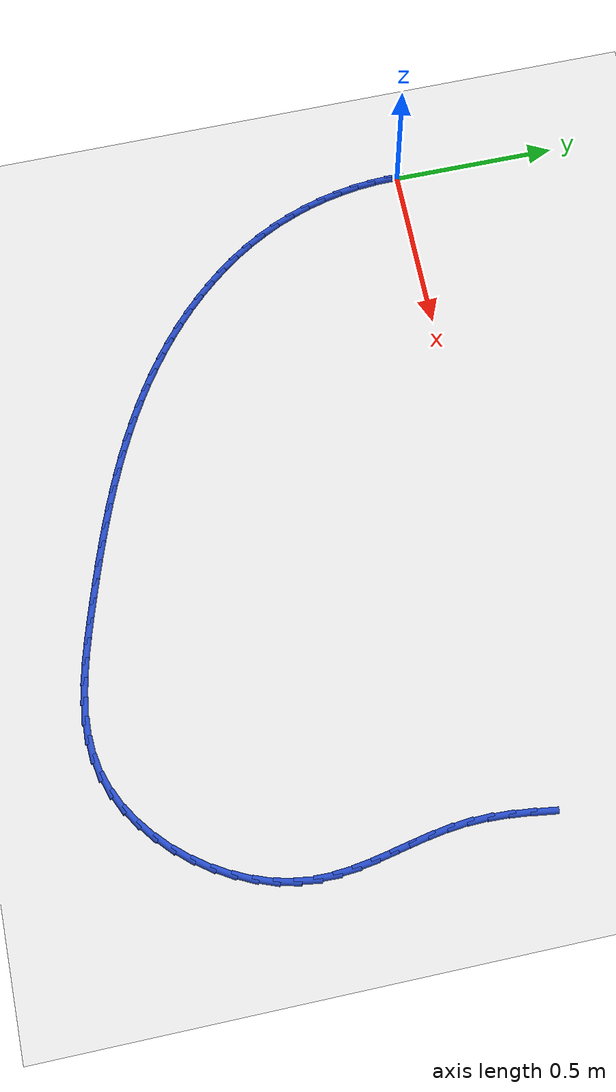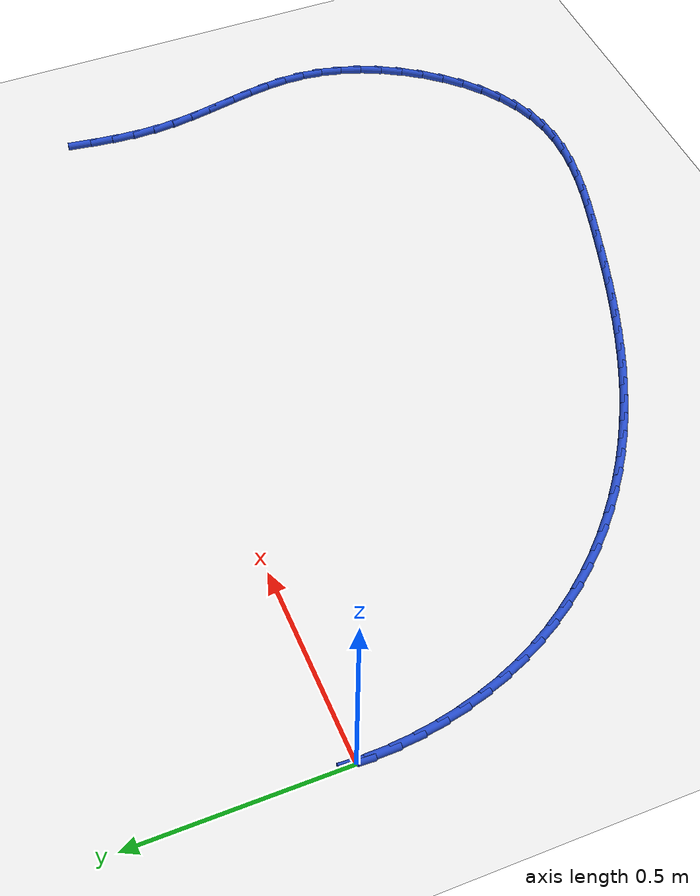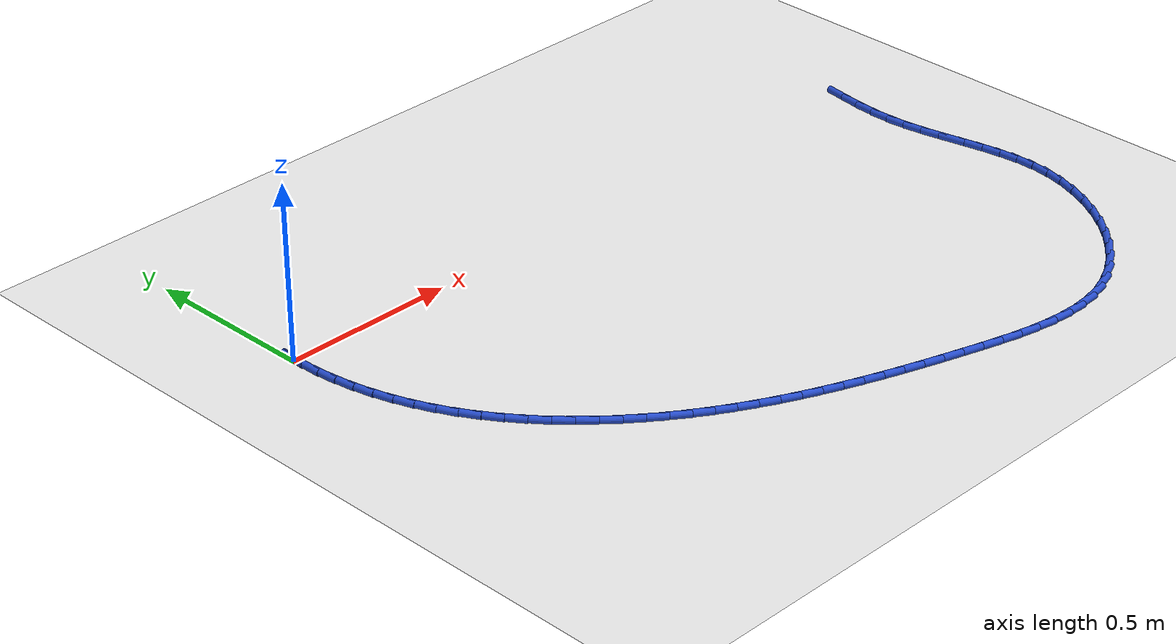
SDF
<sdf version="1.6">
 <world name="default">
  <model name="ground_plane">
   <static>1</static>
   <link name="link">
    <collision name="collision">
     <geometry><plane><normal>0 0 1</normal><size>100 100</size></plane></geometry>
     <surface><friction><ode><mu>100</mu><mu2>50</mu2></ode></friction></surface>
    </collision>
    <visual name="visual">
     <cast_shadows>0</cast_shadows>
     <geometry><plane><normal>0 0 1</normal><size>100 100</size></plane></geometry>
     <material>
      <script><uri>file://media/materials/scripts/gazebo.material</uri><name>Gazebo/WhiteGlow</name></script>
     </material>
    </visual>
   </link>
  </model>
  <model name="line">
   <link name="link_0">
    <pose>3.122502256758253e-17 1.3877787807814457e-17 0.01 0 1.57 1.5209189203421452</pose>
    <collision name="collision">
     <geometry><cylinder><radius>0.01</radius><length>0.08</length></cylinder></geometry>
    </collision>
    <visual name="visual">
     <material>
      <script><name>Gazebo/Blue</name><uri>file://media/materials/scripts/gazebo.material</uri></script>
     </material>
     <geometry><cylinder><radius>0.01</radius><length>0.08</length></cylinder></geometry>
    </visual>
   </link>
   <link name="link_66">
    <pose>2.0077168839164266 -0.030928540000741786 0.01 0 1.57 1.4371809592335538</pose>
    <collision name="collision">
     <geometry><cylinder><radius>0.01</radius><length>0.08</length></cylinder></geometry>
    </collision>
    <visual name="visual">
     <material>
      <script><name>Gazebo/Blue</name><uri>file://media/materials/scripts/gazebo.material</uri></script>
     </material>
     <geometry><cylinder><radius>0.01</radius><length>0.08</length></cylinder></geometry>
    </visual>
   </link>
   <link name="link_67">
    <pose>1.999689627323776 -0.09064793757556627 0.01 0 1.57 1.479350512545032</pose>
    <collision name="collision">
     <geometry><cylinder><radius>0.01</radius><length>0.08</length></cylinder></geometry>
    </collision>
    <visual name="visual">
     <material>
      <script><name>Gazebo/Blue</name><uri>file://media/materials/scripts/gazebo.material</uri></script>
     </material>
     <geometry><cylinder><radius>0.01</radius><length>0.08</length></cylinder></geometry>
    </visual>
   </link>
   <link name="link_68">
    <pose>1.9942504322127308 -0.14996202686124382 0.01 0 1.57 1.537091586077224</pose>
    <collision name="collision">
     <geometry><cylinder><radius>0.01</radius><length>0.08</length></cylinder></geometry>
    </collision>
    <visual name="visual">
     <material>
      <script><name>Gazebo/Blue</name><uri>file://media/materials/scripts/gazebo.material</uri></script>
     </material>
     <geometry><cylinder><radius>0.01</radius><length>0.08</length></cylinder></geometry>
    </visual>
   </link>
   <link name="link_69">
    <pose>1.9922726271525533 -0.20862012736019053 0.01 0 1.57 -1.5303291510695451</pose>
    <collision name="collision">
     <geometry><cylinder><radius>0.01</radius><length>0.08</length></cylinder></geometry>
    </collision>
    <visual name="visual">
     <material>
      <script><name>Gazebo/Blue</name><uri>file://media/materials/scripts/gazebo.material</uri></script>
     </material>
     <geometry><cylinder><radius>0.01</radius><length>0.08</length></cylinder></geometry>
    </visual>
   </link>
   <link name="link_70">
    <pose>1.9946110879901195 -0.266375188702266 0.01 0 1.57 -1.4546692256269975</pose>
    <collision name="collision">
     <geometry><cylinder><radius>0.01</radius><length>0.08</length></cylinder></geometry>
    </collision>
    <visual name="visual">
     <material>
      <script><name>Gazebo/Blue</name><uri>file://media/materials/scripts/gazebo.material</uri></script>
     </material>
     <geometry><cylinder><radius>0.01</radius><length>0.08</length></cylinder></geometry>
    </visual>
   </link>
   <link name="link_71">
    <pose>2.0012345045487403 -0.3231544962134891 0.01 0 1.57 -1.400652744581556</pose>
    <collision name="collision">
     <geometry><cylinder><radius>0.01</radius><length>0.08</length></cylinder></geometry>
    </collision>
    <visual name="visual">
     <material>
      <script><name>Gazebo/Blue</name><uri>file://media/materials/scripts/gazebo.material</uri></script>
     </material>
     <geometry><cylinder><radius>0.01</radius><length>0.08</length></cylinder></geometry>
    </visual>
   </link>
   <link name="link_72">
    <pose>2.0108518960822406 -0.37913314497971484 0.01 0 1.57 -1.370798555174001</pose>
    <collision name="collision">
     <geometry><cylinder><radius>0.01</radius><length>0.08</length></cylinder></geometry>
    </collision>
    <visual name="visual">
     <material>
      <script><name>Gazebo/Blue</name><uri>file://media/materials/scripts/gazebo.material</uri></script>
     </material>
     <geometry><cylinder><radius>0.01</radius><length>0.08</length></cylinder></geometry>
    </visual>
   </link>
   <link name="link_73">
    <pose>2.022076224090124 -0.43450512712988504 0.01 0 1.57 -1.3654991140199604</pose>
    <collision name="collision">
     <geometry><cylinder><radius>0.01</radius><length>0.08</length></cylinder></geometry>
    </collision>
    <visual name="visual">
     <material>
      <script><name>Gazebo/Blue</name><uri>file://media/materials/scripts/gazebo.material</uri></script>
     </material>
     <geometry><cylinder><radius>0.01</radius><length>0.08</length></cylinder></geometry>
    </visual>
   </link>
   <link name="link_74">
    <pose>2.033520450071897 -0.4894644347929412 0.01 0 1.57 -1.3852151180199075</pose>
    <collision name="collision">
     <geometry><cylinder><radius>0.01</radius><length>0.08</length></cylinder></geometry>
    </collision>
    <visual name="visual">
     <material>
      <script><name>Gazebo/Blue</name><uri>file://media/materials/scripts/gazebo.material</uri></script>
     </material>
     <geometry><cylinder><radius>0.01</radius><length>0.08</length></cylinder></geometry>
    </visual>
   </link>
   <link name="link_75">
    <pose>2.0437975355270654 -0.5442050600978262 0.01 0 1.57 -1.4305771110930954</pose>
    <collision name="collision">
     <geometry><cylinder><radius>0.01</radius><length>0.08</length></cylinder></geometry>
    </collision>
    <visual name="visual">
     <material>
      <script><name>Gazebo/Blue</name><uri>file://media/materials/scripts/gazebo.material</uri></script>
     </material>
     <geometry><cylinder><radius>0.01</radius><length>0.08</length></cylinder></geometry>
    </visual>
   </link>
   <link name="link_76">
    <pose>2.051520441955133 -0.5989209951734801 0.01 0 1.57 -1.5020033027262996</pose>
    <collision name="collision">
     <geometry><cylinder><radius>0.01</radius><length>0.08</length></cylinder></geometry>
    </collision>
    <visual name="visual">
     <material>
      <script><name>Gazebo/Blue</name><uri>file://media/materials/scripts/gazebo.material</uri></script>
     </material>
     <geometry><cylinder><radius>0.01</radius><length>0.08</length></cylinder></geometry>
    </visual>
   </link>
   <link name="link_77">
    <pose>2.0553021308556056 -0.6538062321488449 0.01 0 1.57 1.54281072564912</pose>
    <collision name="collision">
     <geometry><cylinder><radius>0.01</radius><length>0.08</length></cylinder></geometry>
    </collision>
    <visual name="visual">
     <material>
      <script><name>Gazebo/Blue</name><uri>file://media/materials/scripts/gazebo.material</uri></script>
     </material>
     <geometry><cylinder><radius>0.01</radius><length>0.08</length></cylinder></geometry>
    </visual>
   </link>
   <link name="link_78">
    <pose>2.053755563727989 -0.7090547631528635 0.01 0 1.57 1.426280595502677</pose>
    <collision name="collision">
     <geometry><cylinder><radius>0.01</radius><length>0.08</length></cylinder></geometry>
    </collision>
    <visual name="visual">
     <material>
      <script><name>Gazebo/Blue</name><uri>file://media/materials/scripts/gazebo.material</uri></script>
     </material>
     <geometry><cylinder><radius>0.01</radius><length>0.08</length></cylinder></geometry>
    </visual>
   </link>
   <link name="link_79">
    <pose>2.0456446837578306 -0.7647880486003963 0.01 0 1.57 1.3126348654777091</pose>
    <collision name="collision">
     <geometry><cylinder><radius>0.01</radius><length>0.08</length></cylinder></geometry>
    </collision>
    <visual name="visual">
     <material>
      <script><name>Gazebo/Blue</name><uri>file://media/materials/scripts/gazebo.material</uri></script>
     </material>
     <geometry><cylinder><radius>0.01</radius><length>0.08</length></cylinder></geometry>
    </visual>
   </link>
   <link name="link_80">
    <pose>2.030918327204529 -0.8205583253938308 0.01 0 1.57 1.2092499428486723</pose>
    <collision name="collision">
     <geometry><cylinder><radius>0.01</radius><length>0.08</length></cylinder></geometry>
    </collision>
    <visual name="visual">
     <material>
      <script><name>Gazebo/Blue</name><uri>file://media/materials/scripts/gazebo.material</uri></script>
     </material>
     <geometry><cylinder><radius>0.01</radius><length>0.08</length></cylinder></geometry>
    </visual>
   </link>
   <link name="link_81">
    <pose>2.0100846769506946 -0.8756491199024441 0.01 0 1.57 1.1133836005771198</pose>
    <collision name="collision">
     <geometry><cylinder><radius>0.01</radius><length>0.08</length></cylinder></geometry>
    </collision>
    <visual name="visual">
     <material>
      <script><name>Gazebo/Blue</name><uri>file://media/materials/scripts/gazebo.material</uri></script>
     </material>
     <geometry><cylinder><radius>0.01</radius><length>0.08</length></cylinder></geometry>
    </visual>
   </link>
   <link name="link_82">
    <pose>1.9836552201593036 -0.9293423711167709 0.01 0 1.57 1.0223301721359905</pose>
    <collision name="collision">
     <geometry><cylinder><radius>0.01</radius><length>0.08</length></cylinder></geometry>
    </collision>
    <visual name="visual">
     <material>
      <script><name>Gazebo/Blue</name><uri>file://media/materials/scripts/gazebo.material</uri></script>
     </material>
     <geometry><cylinder><radius>0.01</radius><length>0.08</length></cylinder></geometry>
    </visual>
   </link>
   <link name="link_83">
    <pose>1.952141443993334 -0.9809200180273461 0.01 0 1.57 0.9335131094373557</pose>
    <collision name="collision">
     <geometry><cylinder><radius>0.01</radius><length>0.08</length></cylinder></geometry>
    </collision>
    <visual name="visual">
     <material>
      <script><name>Gazebo/Blue</name><uri>file://media/materials/scripts/gazebo.material</uri></script>
     </material>
     <geometry><cylinder><radius>0.01</radius><length>0.08</length></cylinder></geometry>
    </visual>
   </link>
   <link name="link_84">
    <pose>1.9160548356157627 -1.0296639996247028 0.01 0 1.57 0.8444376204125429</pose>
    <collision name="collision">
     <geometry><cylinder><radius>0.01</radius><length>0.08</length></cylinder></geometry>
    </collision>
    <visual name="visual">
     <material>
      <script><name>Gazebo/Blue</name><uri>file://media/materials/scripts/gazebo.material</uri></script>
     </material>
     <geometry><cylinder><radius>0.01</radius><length>0.08</length></cylinder></geometry>
    </visual>
   </link>
   <link name="link_85">
    <pose>1.875906882189567 -1.0748562548993759 0.01 0 1.57 0.7526123004209107</pose>
    <collision name="collision">
     <geometry><cylinder><radius>0.01</radius><length>0.08</length></cylinder></geometry>
    </collision>
    <visual name="visual">
     <material>
      <script><name>Gazebo/Blue</name><uri>file://media/materials/scripts/gazebo.material</uri></script>
     </material>
     <geometry><cylinder><radius>0.01</radius><length>0.08</length></cylinder></geometry>
    </visual>
   </link>
   <link name="link_86">
    <pose>1.8322090708777228 -1.115778722841901 0.01 0 1.57 0.655476615069175</pose>
    <collision name="collision">
     <geometry><cylinder><radius>0.01</radius><length>0.08</length></cylinder></geometry>
    </collision>
    <visual name="visual">
     <material>
      <script><name>Gazebo/Blue</name><uri>file://media/materials/scripts/gazebo.material</uri></script>
     </material>
     <geometry><cylinder><radius>0.01</radius><length>0.08</length></cylinder></geometry>
    </visual>
   </link>
   <link name="link_87">
    <pose>1.7854728888432092 -1.151713342442811 0.01 0 1.57 0.5503727025824593</pose>
    <collision name="collision">
     <geometry><cylinder><radius>0.01</radius><length>0.08</length></cylinder></geometry>
    </collision>
    <visual name="visual">
     <material>
      <script><name>Gazebo/Blue</name><uri>file://media/materials/scripts/gazebo.material</uri></script>
     </material>
     <geometry><cylinder><radius>0.01</radius><length>0.08</length></cylinder></geometry>
    </visual>
   </link>
   <link name="link_88">
    <pose>1.7362098232490026 -1.1819420526926412 0.01 0 1.57 0.4346202002206564</pose>
    <collision name="collision">
     <geometry><cylinder><radius>0.01</radius><length>0.08</length></cylinder></geometry>
    </collision>
    <visual name="visual">
     <material>
      <script><name>Gazebo/Blue</name><uri>file://media/materials/scripts/gazebo.material</uri></script>
     </material>
     <geometry><cylinder><radius>0.01</radius><length>0.08</length></cylinder></geometry>
    </visual>
   </link>
   <link name="link_89">
    <pose>1.6849313612580796 -1.2057467925819256 0.01 0 1.57 0.30597718312868105</pose>
    <collision name="collision">
     <geometry><cylinder><radius>0.01</radius><length>0.08</length></cylinder></geometry>
    </collision>
    <visual name="visual">
     <material>
      <script><name>Gazebo/Blue</name><uri>file://media/materials/scripts/gazebo.material</uri></script>
     </material>
     <geometry><cylinder><radius>0.01</radius><length>0.08</length></cylinder></geometry>
    </visual>
   </link>
   <link name="link_90">
    <pose>1.6321466880025142 -1.222421343795039 0.01 0 1.57 0.17363265179253376</pose>
    <collision name="collision">
     <geometry><cylinder><radius>0.01</radius><length>0.08</length></cylinder></geometry>
    </collision>
    <visual name="visual">
     <material>
      <script><name>Gazebo/Blue</name><uri>file://media/materials/scripts/gazebo.material</uri></script>
     </material>
     <geometry><cylinder><radius>0.01</radius><length>0.08</length></cylinder></geometry>
    </visual>
   </link>
   <link name="link_91">
    <pose>1.5782452264790643 -1.2318755989033119 0.01 0 1.57 0.05556115870376617</pose>
    <collision name="collision">
     <geometry><cylinder><radius>0.01</radius><length>0.08</length></cylinder></geometry>
    </collision>
    <visual name="visual">
     <material>
      <script><name>Gazebo/Blue</name><uri>file://media/materials/scripts/gazebo.material</uri></script>
     </material>
     <geometry><cylinder><radius>0.01</radius><length>0.08</length></cylinder></geometry>
    </visual>
   </link>
   <link name="link_92">
    <pose>1.523440619516839 -1.2349237435980724 0.01 0 1.57 -0.044497903452012905</pose>
    <collision name="collision">
     <geometry><cylinder><radius>0.01</radius><length>0.08</length></cylinder></geometry>
    </collision>
    <visual name="visual">
     <material>
      <script><name>Gazebo/Blue</name><uri>file://media/materials/scripts/gazebo.material</uri></script>
     </material>
     <geometry><cylinder><radius>0.01</radius><length>0.08</length></cylinder></geometry>
    </visual>
   </link>
   <link name="link_93">
    <pose>1.467932484579769 -1.2324521164272828 0.01 0 1.57 -0.12617493073453853</pose>
    <collision name="collision">
     <geometry><cylinder><radius>0.01</radius><length>0.08</length></cylinder></geometry>
    </collision>
    <visual name="visual">
     <material>
      <script><name>Gazebo/Blue</name><uri>file://media/materials/scripts/gazebo.material</uri></script>
     </material>
     <geometry><cylinder><radius>0.01</radius><length>0.08</length></cylinder></geometry>
    </visual>
   </link>
   <link name="link_94">
    <pose>1.4119204391317843 -1.2253470559389048 0.01 0 1.57 -0.19036652279598176</pose>
    <collision name="collision">
     <geometry><cylinder><radius>0.01</radius><length>0.08</length></cylinder></geometry>
    </collision>
    <visual name="visual">
     <material>
      <script><name>Gazebo/Blue</name><uri>file://media/materials/scripts/gazebo.material</uri></script>
     </material>
     <geometry><cylinder><radius>0.01</radius><length>0.08</length></cylinder></geometry>
    </visual>
   </link>
   <link name="link_95">
    <pose>1.3556041006368165 -1.2144949006808996 0.01 0 1.57 -0.23842325144652476</pose>
    <collision name="collision">
     <geometry><cylinder><radius>0.01</radius><length>0.08</length></cylinder></geometry>
    </collision>
    <visual name="visual">
     <material>
      <script><name>Gazebo/Blue</name><uri>file://media/materials/scripts/gazebo.material</uri></script>
     </material>
     <geometry><cylinder><radius>0.01</radius><length>0.08</length></cylinder></geometry>
    </visual>
   </link>
   <link name="link_96">
    <pose>1.2991830865587963 -1.200781989201229 0.01 0 1.57 -0.2716257477336789</pose>
    <collision name="collision">
     <geometry><cylinder><radius>0.01</radius><length>0.08</length></cylinder></geometry>
    </collision>
    <visual name="visual">
     <material>
      <script><name>Gazebo/Blue</name><uri>file://media/materials/scripts/gazebo.material</uri></script>
     </material>
     <geometry><cylinder><radius>0.01</radius><length>0.08</length></cylinder></geometry>
    </visual>
   </link>
   <link name="link_97">
    <pose>1.2428570143616537 -1.1850946600478545 0.01 0 1.57 -0.2908997519114767</pose>
    <collision name="collision">
     <geometry><cylinder><radius>0.01</radius><length>0.08</length></cylinder></geometry>
    </collision>
    <visual name="visual">
     <material>
      <script><name>Gazebo/Blue</name><uri>file://media/materials/scripts/gazebo.material</uri></script>
     </material>
     <geometry><cylinder><radius>0.01</radius><length>0.08</length></cylinder></geometry>
    </visual>
   </link>
   <link name="link_98">
    <pose>1.186825496409682 -1.1683192199965935 0.01 0 1.57 -0.29975713564570045</pose>
    <collision name="collision">
     <geometry><cylinder><radius>0.01</radius><length>0.08</length></cylinder></geometry>
    </collision>
    <visual name="visual">
     <material>
      <script><name>Gazebo/Blue</name><uri>file://media/materials/scripts/gazebo.material</uri></script>
     </material>
     <geometry><cylinder><radius>0.01</radius><length>0.08</length></cylinder></geometry>
    </visual>
   </link>
   <link name="link_99">
    <pose>1.1312564464120582 -1.151144484499731 0.01 0 1.57 -0.3086457067300076</pose>
    <collision name="collision">
     <geometry><cylinder><radius>0.01</radius><length>0.08</length></cylinder></geometry>
    </collision>
    <visual name="visual">
     <material>
      <script><name>Gazebo/Blue</name><uri>file://media/materials/scripts/gazebo.material</uri></script>
     </material>
     <geometry><cylinder><radius>0.01</radius><length>0.08</length></cylinder></geometry>
    </visual>
   </link>
   <link name="link_100">
    <pose>1.0762110106767229 -1.133594078789194 0.01 0 1.57 -0.319788634461638</pose>
    <collision name="collision">
     <geometry><cylinder><radius>0.01</radius><length>0.08</length></cylinder></geometry>
    </collision>
    <visual name="visual">
     <material>
      <script><name>Gazebo/Blue</name><uri>file://media/materials/scripts/gazebo.material</uri></script>
     </material>
     <geometry><cylinder><radius>0.01</radius><length>0.08</length></cylinder></geometry>
    </visual>
   </link>
   <link name="link_101">
    <pose>1.0217278803466612 -1.115551726254679 0.01 0 1.57 -0.3332288568283065</pose>
    <collision name="collision">
     <geometry><cylinder><radius>0.01</radius><length>0.08</length></cylinder></geometry>
    </collision>
    <visual name="visual">
     <material>
      <script><name>Gazebo/Blue</name><uri>file://media/materials/scripts/gazebo.material</uri></script>
     </material>
     <geometry><cylinder><radius>0.01</radius><length>0.08</length></cylinder></geometry>
    </visual>
   </link>
   <link name="link_102">
    <pose>0.967845746564857 -1.0969011502858825 0.01 0 1.57 -0.34900631645744634</pose>
    <collision name="collision">
     <geometry><cylinder><radius>0.01</radius><length>0.08</length></cylinder></geometry>
    </collision>
    <visual name="visual">
     <material>
      <script><name>Gazebo/Blue</name><uri>file://media/materials/scripts/gazebo.material</uri></script>
     </material>
     <geometry><cylinder><radius>0.01</radius><length>0.08</length></cylinder></geometry>
    </visual>
   </link>
   <link name="link_103">
    <pose>0.9146033004742983 -1.0775260742725021 0.01 0 1.57 -0.36715566531536015</pose>
    <collision name="collision">
     <geometry><cylinder><radius>0.01</radius><length>0.08</length></cylinder></geometry>
    </collision>
    <visual name="visual">
     <material>
      <script><name>Gazebo/Blue</name><uri>file://media/materials/scripts/gazebo.material</uri></script>
     </material>
     <geometry><cylinder><radius>0.01</radius><length>0.08</length></cylinder></geometry>
    </visual>
   </link>
   <link name="link_104">
    <pose>0.86203923321797 -1.057310221604235 0.01 0 1.57 -0.3877034455103826</pose>
    <collision name="collision">
     <geometry><cylinder><radius>0.01</radius><length>0.08</length></cylinder></geometry>
    </collision>
    <visual name="visual">
     <material>
      <script><name>Gazebo/Blue</name><uri>file://media/materials/scripts/gazebo.material</uri></script>
     </material>
     <geometry><cylinder><radius>0.01</radius><length>0.08</length></cylinder></geometry>
    </visual>
   </link>
   <link name="link_105">
    <pose>0.8101922359388571 -1.0361373156707772 0.01 0 1.57 -0.4106647496831665</pose>
    <collision name="collision">
     <geometry><cylinder><radius>0.01</radius><length>0.08</length></cylinder></geometry>
    </collision>
    <visual name="visual">
     <material>
      <script><name>Gazebo/Blue</name><uri>file://media/materials/scripts/gazebo.material</uri></script>
     </material>
     <geometry><cylinder><radius>0.01</radius><length>0.08</length></cylinder></geometry>
    </visual>
   </link>
   <link name="link_106">
    <pose>0.7591009997799458 -1.0138910798618261 0.01 0 1.57 -0.43603940670901475</pose>
    <collision name="collision">
     <geometry><cylinder><radius>0.01</radius><length>0.08</length></cylinder></geometry>
    </collision>
    <visual name="visual">
     <material>
      <script><name>Gazebo/Blue</name><uri>file://media/materials/scripts/gazebo.material</uri></script>
     </material>
     <geometry><cylinder><radius>0.01</radius><length>0.08</length></cylinder></geometry>
    </visual>
   </link>
   <link name="link_107">
    <pose>0.7088042158842204 -0.9904552375670784 0.01 0 1.57 -0.4638077970103449</pose>
    <collision name="collision">
     <geometry><cylinder><radius>0.01</radius><length>0.08</length></cylinder></geometry>
    </collision>
    <visual name="visual">
     <material>
      <script><name>Gazebo/Blue</name><uri>file://media/materials/scripts/gazebo.material</uri></script>
     </material>
     <geometry><cylinder><radius>0.01</radius><length>0.08</length></cylinder></geometry>
    </visual>
   </link>
   <link name="link_108">
    <pose>0.6593405753946684 -0.9657135121762317 0.01 0 1.57 -0.49392647604675305</pose>
    <collision name="collision">
     <geometry><cylinder><radius>0.01</radius><length>0.08</length></cylinder></geometry>
    </collision>
    <visual name="visual">
     <material>
      <script><name>Gazebo/Blue</name><uri>file://media/materials/scripts/gazebo.material</uri></script>
     </material>
     <geometry><cylinder><radius>0.01</radius><length>0.08</length></cylinder></geometry>
    </visual>
   </link>
   <link name="link_109">
    <pose>0.6107487694542745 -0.9395496270789825 0.01 0 1.57 -0.5263238700649688</pose>
    <collision name="collision">
     <geometry><cylinder><radius>0.01</radius><length>0.08</length></cylinder></geometry>
    </collision>
    <visual name="visual">
     <material>
      <script><name>Gazebo/Blue</name><uri>file://media/materials/scripts/gazebo.material</uri></script>
     </material>
     <geometry><cylinder><radius>0.01</radius><length>0.08</length></cylinder></geometry>
    </visual>
   </link>
   <link name="link_110">
    <pose>0.5630674892060238 -0.9118473056650275 0.01 0 1.57 -0.5608963952870185</pose>
    <collision name="collision">
     <geometry><cylinder><radius>0.01</radius><length>0.08</length></cylinder></geometry>
    </collision>
    <visual name="visual">
     <material>
      <script><name>Gazebo/Blue</name><uri>file://media/materials/scripts/gazebo.material</uri></script>
     </material>
     <geometry><cylinder><radius>0.01</radius><length>0.08</length></cylinder></geometry>
    </visual>
   </link>
   <link name="link_111">
    <pose>0.5163354257929031 -0.8824902713240643 0.01 0 1.57 -0.5975054248438512</pose>
    <collision name="collision">
     <geometry><cylinder><radius>0.01</radius><length>0.08</length></cylinder></geometry>
    </collision>
    <visual name="visual">
     <material>
      <script><name>Gazebo/Blue</name><uri>file://media/materials/scripts/gazebo.material</uri></script>
     </material>
     <geometry><cylinder><radius>0.01</radius><length>0.08</length></cylinder></geometry>
    </visual>
   </link>
   <link name="link_112">
    <pose>0.4705912703578974 -0.8513622474457893 0.01 0 1.57 -0.6359754816190456</pose>
    <collision name="collision">
     <geometry><cylinder><radius>0.01</radius><length>0.08</length></cylinder></geometry>
    </collision>
    <visual name="visual">
     <material>
      <script><name>Gazebo/Blue</name><uri>file://media/materials/scripts/gazebo.material</uri></script>
     </material>
     <geometry><cylinder><radius>0.01</radius><length>0.08</length></cylinder></geometry>
    </visual>
   </link>
   <link name="link_113">
    <pose>0.42587379380644874 -0.818347022167482 0.01 0 1.57 -0.6760886346470875</pose>
    <collision name="collision">
     <geometry><cylinder><radius>0.01</radius><length>0.08</length></cylinder></geometry>
    </collision>
    <visual name="visual">
     <material>
      <script><name>Gazebo/Blue</name><uri>file://media/materials/scripts/gazebo.material</uri></script>
     </material>
     <geometry><cylinder><radius>0.01</radius><length>0.08</length></cylinder></geometry>
    </visual>
   </link>
   <link name="link_114">
    <pose>0.3822670957795184 -0.7833651794594744 0.01 0 1.57 -0.7178271828413769</pose>
    <collision name="collision">
     <geometry><cylinder><radius>0.01</radius><length>0.08</length></cylinder></geometry>
    </collision>
    <visual name="visual">
     <material>
      <script><name>Gazebo/Blue</name><uri>file://media/materials/scripts/gazebo.material</uri></script>
     </material>
     <geometry><cylinder><radius>0.01</radius><length>0.08</length></cylinder></geometry>
    </visual>
   </link>
   <link name="link_115">
    <pose>0.33997626201976017 -0.7464355143793621 0.01 0 1.57 -0.7614377412711274</pose>
    <collision name="collision">
     <geometry><cylinder><radius>0.01</radius><length>0.08</length></cylinder></geometry>
    </collision>
    <visual name="visual">
     <material>
      <script><name>Gazebo/Blue</name><uri>file://media/materials/scripts/gazebo.material</uri></script>
     </material>
     <geometry><cylinder><radius>0.01</radius><length>0.08</length></cylinder></geometry>
    </visual>
   </link>
   <link name="link_116">
    <pose>0.29922634605470966 -0.7075930309363139 0.01 0 1.57 -0.807179670844888</pose>
    <collision name="collision">
     <geometry><cylinder><radius>0.01</radius><length>0.08</length></cylinder></geometry>
    </collision>
    <visual name="visual">
     <material>
      <script><name>Gazebo/Blue</name><uri>file://media/materials/scripts/gazebo.material</uri></script>
     </material>
     <geometry><cylinder><radius>0.01</radius><length>0.08</length></cylinder></geometry>
    </visual>
   </link>
   <link name="link_117">
    <pose>0.26024240141190047 -0.6668727331394986 0.01 0 1.57 -0.8553000056482869</pose>
    <collision name="collision">
     <geometry><cylinder><radius>0.01</radius><length>0.08</length></cylinder></geometry>
    </collision>
    <visual name="visual">
     <material>
      <script><name>Gazebo/Blue</name><uri>file://media/materials/scripts/gazebo.material</uri></script>
     </material>
     <geometry><cylinder><radius>0.01</radius><length>0.08</length></cylinder></geometry>
    </visual>
   </link>
   <link name="link_118">
    <pose>0.22324948161886635 -0.6243096249980832 0.01 0 1.57 -0.9060268833634362</pose>
    <collision name="collision">
     <geometry><cylinder><radius>0.01</radius><length>0.08</length></cylinder></geometry>
    </collision>
    <visual name="visual">
     <material>
      <script><name>Gazebo/Blue</name><uri>file://media/materials/scripts/gazebo.material</uri></script>
     </material>
     <geometry><cylinder><radius>0.01</radius><length>0.08</length></cylinder></geometry>
    </visual>
   </link>
   <link name="link_119">
    <pose>0.18847264020314278 -0.5799387105212379 0.01 0 1.57 -0.9595599174745667</pose>
    <collision name="collision">
     <geometry><cylinder><radius>0.01</radius><length>0.08</length></cylinder></geometry>
    </collision>
    <visual name="visual">
     <material>
      <script><name>Gazebo/Blue</name><uri>file://media/materials/scripts/gazebo.material</uri></script>
     </material>
     <geometry><cylinder><radius>0.01</radius><length>0.08</length></cylinder></geometry>
    </visual>
   </link>
   <link name="link_120">
    <pose>0.15613693069226356 -0.5337949937181308 0.01 0 1.57 -1.016057330949824</pose>
    <collision name="collision">
     <geometry><cylinder><radius>0.01</radius><length>0.08</length></cylinder></geometry>
    </collision>
    <visual name="visual">
     <material>
      <script><name>Gazebo/Blue</name><uri>file://media/materials/scripts/gazebo.material</uri></script>
     </material>
     <geometry><cylinder><radius>0.01</radius><length>0.08</length></cylinder></geometry>
    </visual>
   </link>
   <link name="link_121">
    <pose>0.12646740661376285 -0.48591347859792955 0.01 0 1.57 -1.0755015590262964</pose>
    <collision name="collision">
     <geometry><cylinder><radius>0.01</radius><length>0.08</length></cylinder></geometry>
    </collision>
    <visual name="visual">
     <material>
      <script><name>Gazebo/Blue</name><uri>file://media/materials/scripts/gazebo.material</uri></script>
     </material>
     <geometry><cylinder><radius>0.01</radius><length>0.08</length></cylinder></geometry>
    </visual>
   </link>
   <link name="link_122">
    <pose>0.09968428743205385 -0.4363342635846388 0.01 0 1.57 -1.135958992861906</pose>
    <collision name="collision">
     <geometry><cylinder><radius>0.01</radius><length>0.08</length></cylinder></geometry>
    </collision>
    <visual name="visual">
     <material>
      <script><name>Gazebo/Blue</name><uri>file://media/materials/scripts/gazebo.material</uri></script>
     </material>
     <geometry><cylinder><radius>0.01</radius><length>0.08</length></cylinder></geometry>
    </visual>
   </link>
   <link name="link_123">
    <pose>0.07592559327958147 -0.3851840735044789 0.01 0 1.57 -1.1959458497314348</pose>
    <collision name="collision">
     <geometry><cylinder><radius>0.01</radius><length>0.08</length></cylinder></geometry>
    </collision>
    <visual name="visual">
     <material>
      <script><name>Gazebo/Blue</name><uri>file://media/materials/scripts/gazebo.material</uri></script>
     </material>
     <geometry><cylinder><radius>0.01</radius><length>0.08</length></cylinder></geometry>
    </visual>
   </link>
   <link name="link_124">
    <pose>0.055260607263556874 -0.33266207222973987 0.01 0 1.57 -1.2556538241244048</pose>
    <collision name="collision">
     <geometry><cylinder><radius>0.01</radius><length>0.08</length></cylinder></geometry>
    </collision>
    <visual name="visual">
     <material>
      <script><name>Gazebo/Blue</name><uri>file://media/materials/scripts/gazebo.material</uri></script>
     </material>
     <geometry><cylinder><radius>0.01</radius><length>0.08</length></cylinder></geometry>
    </visual>
   </link>
   <link name="link_125">
    <pose>0.03775649791910823 -0.27896965209086527 0.01 0 1.57 -1.3153303679810213</pose>
    <collision name="collision">
     <geometry><cylinder><radius>0.01</radius><length>0.08</length></cylinder></geometry>
    </collision>
    <visual name="visual">
     <material>
      <script><name>Gazebo/Blue</name><uri>file://media/materials/scripts/gazebo.material</uri></script>
     </material>
     <geometry><cylinder><radius>0.01</radius><length>0.08</length></cylinder></geometry>
    </visual>
   </link>
   <link name="link_126">
    <pose>0.023480433781363788 -0.22430820541829832 0.01 0 1.57 -1.375222288958745</pose>
    <collision name="collision">
     <geometry><cylinder><radius>0.01</radius><length>0.08</length></cylinder></geometry>
    </collision>
    <visual name="visual">
     <material>
      <script><name>Gazebo/Blue</name><uri>file://media/materials/scripts/gazebo.material</uri></script>
     </material>
     <geometry><cylinder><radius>0.01</radius><length>0.08</length></cylinder></geometry>
    </visual>
   </link>
   <link name="link_127">
    <pose>0.012499583385452415 -0.16887912454248463 0.01 0 1.57 -1.4355711980729455</pose>
    <collision name="collision">
     <geometry><cylinder><radius>0.01</radius><length>0.08</length></cylinder></geometry>
    </collision>
    <visual name="visual">
     <material>
      <script><name>Gazebo/Blue</name><uri>file://media/materials/scripts/gazebo.material</uri></script>
     </material>
     <geometry><cylinder><radius>0.01</radius><length>0.08</length></cylinder></geometry>
    </visual>
   </link>
   <link name="link_128">
    <pose>0.004881115266502356 -0.11288380179386762 0.01 0 1.57 -1.496608663506451</pose>
    <collision name="collision">
     <geometry><cylinder><radius>0.01</radius><length>0.08</length></cylinder></geometry>
    </collision>
    <visual name="visual">
     <material>
      <script><name>Gazebo/Blue</name><uri>file://media/materials/scripts/gazebo.material</uri></script>
     </material>
     <geometry><cylinder><radius>0.01</radius><length>0.08</length></cylinder></geometry>
    </visual>
   </link>
   <link name="link_129">
    <pose>0.0006921979596420762 -0.056523629502891304 0.01 0 1.57 -1.5585507692082212</pose>
    <collision name="collision">
     <geometry><cylinder><radius>0.01</radius><length>0.08</length></cylinder></geometry>
    </collision>
    <visual name="visual">
     <material>
      <script><name>Gazebo/Blue</name><uri>file://media/materials/scripts/gazebo.material</uri></script>
     </material>
     <geometry><cylinder><radius>0.01</radius><length>0.08</length></cylinder></geometry>
    </visual>
   </link>
   <link name="link_130">
    <pose>4.163336342344337e-17 4.163336342344337e-17 0.01 0 1.57 1.5200008165387329</pose>
    <collision name="collision">
     <geometry><cylinder><radius>0.01</radius><length>0.08</length></cylinder></geometry>
    </collision>
    <visual name="visual">
     <material>
      <script><name>Gazebo/Blue</name><uri>file://media/materials/scripts/gazebo.material</uri></script>
     </material>
     <geometry><cylinder><radius>0.01</radius><length>0.08</length></cylinder></geometry>
    </visual>
   </link>
  </model>
 </world>
</sdf>
